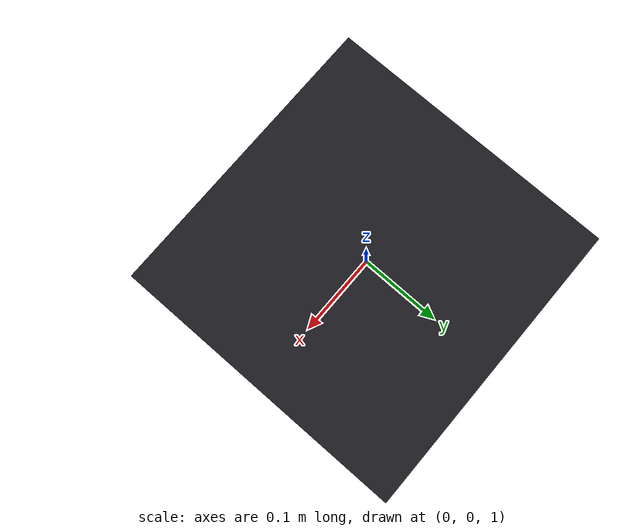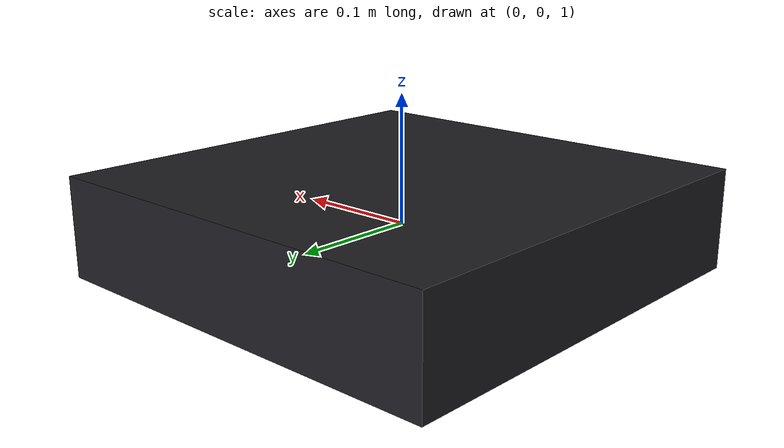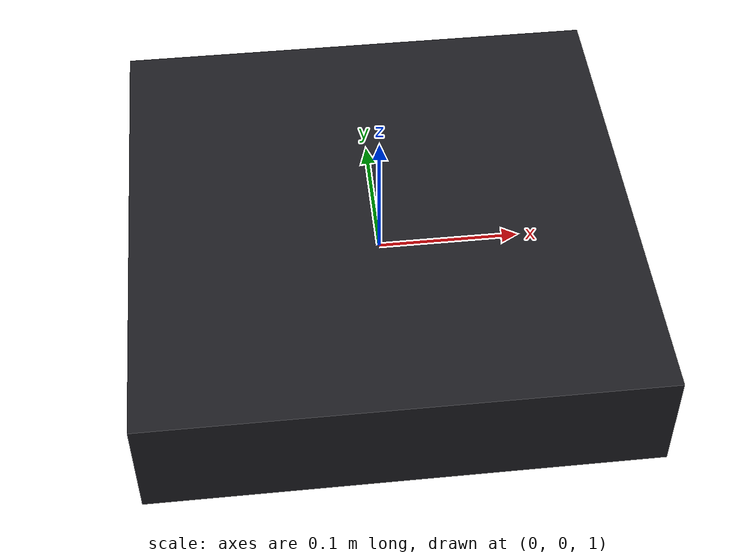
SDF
<?xml version="1.0" ?>
<sdf version="1.9">
  <world name="warehouse_empty">
    <physics name="warehouse_physics" type="ignored">
      <max_step_size>0.004</max_step_size>
      <real_time_factor>1.0</real_time_factor>
    </physics>
    <plugin filename="gz-sim-physics-system" name="gz::sim::systems::Physics"/>
    <plugin filename="gz-sim-sensors-system" name="gz::sim::systems::Sensors">
      <render_engine>ogre2</render_engine>
    </plugin>
    <plugin filename="gz-sim-imu-system" name="gz::sim::systems::Imu"/>
    <plugin filename="gz-sim-odometry-publisher-system" name="gz::sim::systems::OdometryPublisher">
      <odom_frame>odom</odom_frame>
      <robot_base_frame>base_link</robot_base_frame>
      <odom_topic>/warehouse/drone/odometry</odom_topic>
    </plugin>
    <plugin filename="gz-sim-scene-broadcaster-system" name="gz::sim::systems::SceneBroadcaster"/>
    <light name="warehouse_sun" type="directional">
      <pose>0 0 10 0 0 0</pose>
      <diffuse>0.8 0.8 0.8 1</diffuse>
      <specular>0.2 0.2 0.2 1</specular>
      <direction>-0.4 0.2 -0.9</direction>
    </light>
    <model name="warehouse_floor">
      <static>true</static>
      <link name="floor_link">
        <collision name="floor_collision">
          <geometry>
            <box>
              <size>30 30 0.05</size>
            </box>
          </geometry>
        </collision>
        <visual name="floor_visual">
          <geometry>
            <box>
              <size>30 30 0.05</size>
            </box>
          </geometry>
          <material>
            <ambient>0.45 0.45 0.45 1</ambient>
            <diffuse>0.55 0.55 0.55 1</diffuse>
          </material>
        </visual>
      </link>
    </model>
    <include>
      <uri>model://warehouse_drone</uri>
      <pose>0 0 1.0 0 0 0</pose>
    </include>
  </world>
</sdf>

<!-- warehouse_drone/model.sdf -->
<sdf version="1.9">
  <model name="warehouse_drone">
    <static>false</static>
    <pose>0 0 0 0 0 0</pose>
    <link name="base_link">
      <inertial>
        <mass>1.2</mass>
        <inertia>
          <ixx>0.02</ixx>
          <iyy>0.02</iyy>
          <izz>0.03</izz>
        </inertia>
      </inertial>
      <collision name="body_collision">
        <geometry>
          <box>
            <size>0.35 0.35 0.08</size>
          </box>
        </geometry>
      </collision>
      <visual name="body_visual">
        <geometry>
          <box>
            <size>0.35 0.35 0.08</size>
          </box>
        </geometry>
        <material>
          <ambient>0.05 0.05 0.06 1</ambient>
          <diffuse>0.12 0.12 0.14 1</diffuse>
        </material>
      </visual>
      <sensor name="imu_sensor" type="imu">
        <always_on>true</always_on>
        <update_rate>100</update_rate>
        <topic>/warehouse/drone/imu</topic>
      </sensor>
    </link>
    <link name="front_rgbd_camera_link">
      <pose relative_to="base_link">0.20 0 0.08 0 0 0</pose>
      <sensor name="front_rgbd_camera" type="rgbd_camera">
        <always_on>true</always_on>
        <update_rate>15</update_rate>
        <topic>/warehouse/front/rgbd</topic>
        <camera>
          <horizontal_fov>1.047</horizontal_fov>
          <image>
            <width>640</width>
            <height>480</height>
            <format>R8G8B8</format>
          </image>
          <clip>
            <near>0.1</near>
            <far>12.0</far>
          </clip>
        </camera>
      </sensor>
    </link>
    <joint name="front_rgbd_camera_joint" type="fixed">
      <parent>base_link</parent>
      <child>front_rgbd_camera_link</child>
    </joint>
  </model>
</sdf>
